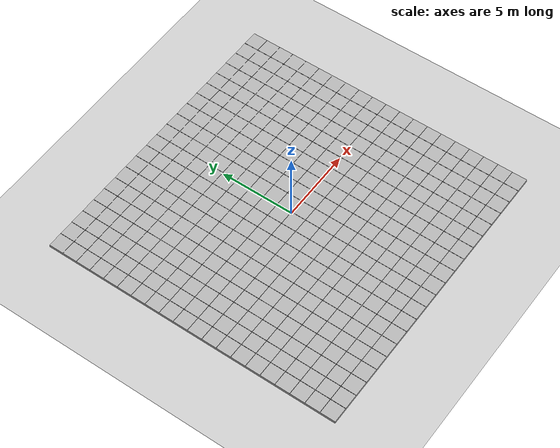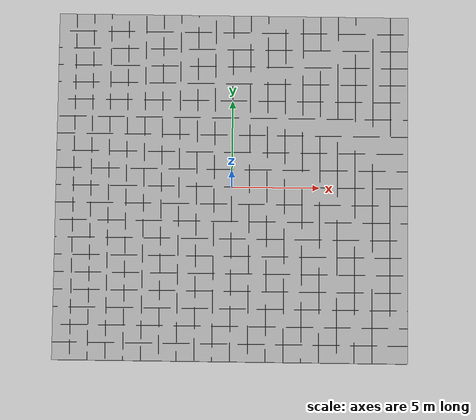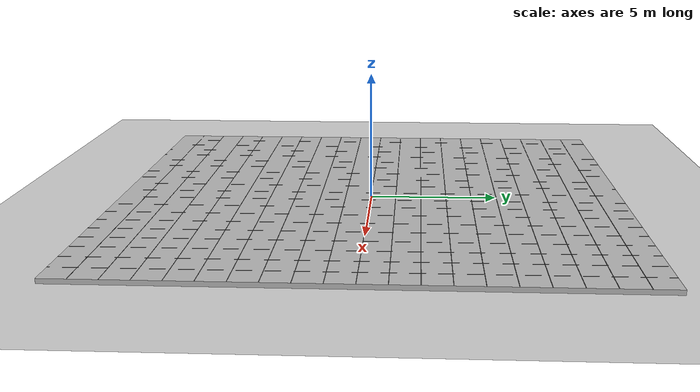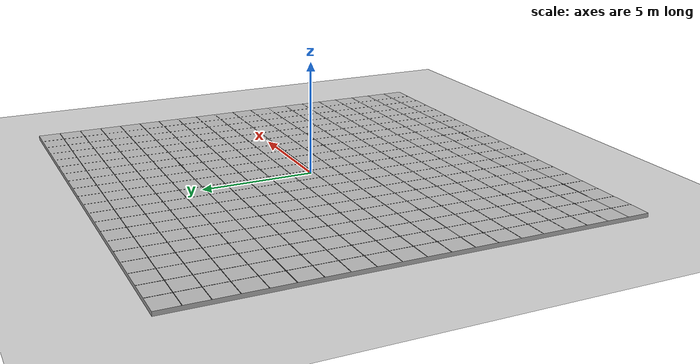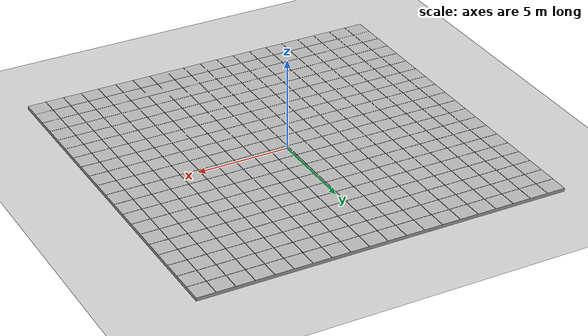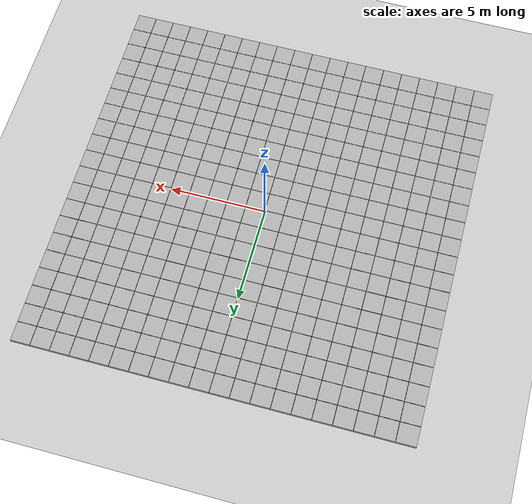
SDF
<?xml version="1.0" ?>
<sdf version="1.6">
  <world name="legged_world">

    <plugin name="gazebo_ros_state" filename="libgazebo_ros_state.so">
      <ros>
        <namespace>/gazebo</namespace>
      </ros>
      <update_rate>50.0</update_rate>
    </plugin>

    <gravity>0 0 -9.81</gravity>

    <include>
      <uri>model://sun</uri>
    </include>

    <model name="ground_plane">
      <static>true</static>
      <link name="link">
        <collision name="collision">
          <geometry>
            <plane>
              <normal>0 0 1</normal>
              <size>100 100</size>
            </plane>
          </geometry>
          <surface>
            <friction>
              <ode>
                <mu>1000</mu>
                <mu2>1000</mu2>
              </ode>
              <torsional>
                <coefficient>100.0</coefficient>
                <patch_radius>0.05</patch_radius>
                <use_patch_radius>true</use_patch_radius>
              </torsional>
            </friction>
            <contact>
              <ode>
                <kp>1000000.0</kp>
                <kd>100.0</kd>
                <max_vel>0.0</max_vel>
                <min_depth>0.001</min_depth>
              </ode>
            </contact>
          </surface>
        </collision>
        <visual name="visual">
          <cast_shadows>false</cast_shadows>
          <geometry>
            <plane>
              <normal>0 0 1</normal>
              <size>100 100</size>
            </plane>
          </geometry>
          <material>
            <script>
              <uri>file://media/materials/scripts/gazebo.material</uri>
              <name>Gazebo/Grey</name>
            </script>
          </material>
        </visual>
      </link>
    </model>

    <!-- ===== SQUARE LARGE RAMP ===== -->
    <model name="tilted_ramp">
      <static>true</static>
      <pose>0 0 0 0 0 0</pose>
      <link name="ramp_link">
        <collision name="collision">
          <pose>0 0 -0.35 0 0 0</pose>
          <geometry><box><size>20 20 1.0</size></box></geometry>
          <surface><friction><ode><mu>1000</mu><mu2>1000</mu2></ode></friction></surface>
        </collision>
        <visual name="top_surface">
          <pose>0 0 -0.35 0 0 0</pose>
          <geometry><box><size>20 20 1.0</size></box></geometry>
          <material>
             <ambient>0.6 0.6 0.6 1</ambient>
             <diffuse>0.7 0.7 0.7 1</diffuse>
          </material>
        </visual>

        <visual name="grid_x_-9">
          <pose>-9 0 0.151 0 0 0</pose>
          <geometry><box><size>0.02 20 0.002</size></box></geometry>
          <material><ambient>0.2 0.2 0.2 1</ambient><diffuse>0.3 0.3 0.3 1</diffuse></material>
        </visual>
        <visual name="grid_y_-9">
          <pose>0 -9 0.151 0 0 0</pose>
          <geometry><box><size>20 0.02 0.002</size></box></geometry>
          <material><ambient>0.2 0.2 0.2 1</ambient><diffuse>0.3 0.3 0.3 1</diffuse></material>
        </visual>

        <visual name="grid_x_-8">
          <pose>-8 0 0.151 0 0 0</pose>
          <geometry><box><size>0.02 20 0.002</size></box></geometry>
          <material><ambient>0.2 0.2 0.2 1</ambient><diffuse>0.3 0.3 0.3 1</diffuse></material>
        </visual>
        <visual name="grid_y_-8">
          <pose>0 -8 0.151 0 0 0</pose>
          <geometry><box><size>20 0.02 0.002</size></box></geometry>
          <material><ambient>0.2 0.2 0.2 1</ambient><diffuse>0.3 0.3 0.3 1</diffuse></material>
        </visual>

        <visual name="grid_x_-7">
          <pose>-7 0 0.151 0 0 0</pose>
          <geometry><box><size>0.02 20 0.002</size></box></geometry>
          <material><ambient>0.2 0.2 0.2 1</ambient><diffuse>0.3 0.3 0.3 1</diffuse></material>
        </visual>
        <visual name="grid_y_-7">
          <pose>0 -7 0.151 0 0 0</pose>
          <geometry><box><size>20 0.02 0.002</size></box></geometry>
          <material><ambient>0.2 0.2 0.2 1</ambient><diffuse>0.3 0.3 0.3 1</diffuse></material>
        </visual>

        <visual name="grid_x_-6">
          <pose>-6 0 0.151 0 0 0</pose>
          <geometry><box><size>0.02 20 0.002</size></box></geometry>
          <material><ambient>0.2 0.2 0.2 1</ambient><diffuse>0.3 0.3 0.3 1</diffuse></material>
        </visual>
        <visual name="grid_y_-6">
          <pose>0 -6 0.151 0 0 0</pose>
          <geometry><box><size>20 0.02 0.002</size></box></geometry>
          <material><ambient>0.2 0.2 0.2 1</ambient><diffuse>0.3 0.3 0.3 1</diffuse></material>
        </visual>

        <visual name="grid_x_-5">
          <pose>-5 0 0.151 0 0 0</pose>
          <geometry><box><size>0.02 20 0.002</size></box></geometry>
          <material><ambient>0.2 0.2 0.2 1</ambient><diffuse>0.3 0.3 0.3 1</diffuse></material>
        </visual>
        <visual name="grid_y_-5">
          <pose>0 -5 0.151 0 0 0</pose>
          <geometry><box><size>20 0.02 0.002</size></box></geometry>
          <material><ambient>0.2 0.2 0.2 1</ambient><diffuse>0.3 0.3 0.3 1</diffuse></material>
        </visual>

        <visual name="grid_x_-4">
          <pose>-4 0 0.151 0 0 0</pose>
          <geometry><box><size>0.02 20 0.002</size></box></geometry>
          <material><ambient>0.2 0.2 0.2 1</ambient><diffuse>0.3 0.3 0.3 1</diffuse></material>
        </visual>
        <visual name="grid_y_-4">
          <pose>0 -4 0.151 0 0 0</pose>
          <geometry><box><size>20 0.02 0.002</size></box></geometry>
          <material><ambient>0.2 0.2 0.2 1</ambient><diffuse>0.3 0.3 0.3 1</diffuse></material>
        </visual>

        <visual name="grid_x_-3">
          <pose>-3 0 0.151 0 0 0</pose>
          <geometry><box><size>0.02 20 0.002</size></box></geometry>
          <material><ambient>0.2 0.2 0.2 1</ambient><diffuse>0.3 0.3 0.3 1</diffuse></material>
        </visual>
        <visual name="grid_y_-3">
          <pose>0 -3 0.151 0 0 0</pose>
          <geometry><box><size>20 0.02 0.002</size></box></geometry>
          <material><ambient>0.2 0.2 0.2 1</ambient><diffuse>0.3 0.3 0.3 1</diffuse></material>
        </visual>

        <visual name="grid_x_-2">
          <pose>-2 0 0.151 0 0 0</pose>
          <geometry><box><size>0.02 20 0.002</size></box></geometry>
          <material><ambient>0.2 0.2 0.2 1</ambient><diffuse>0.3 0.3 0.3 1</diffuse></material>
        </visual>
        <visual name="grid_y_-2">
          <pose>0 -2 0.151 0 0 0</pose>
          <geometry><box><size>20 0.02 0.002</size></box></geometry>
          <material><ambient>0.2 0.2 0.2 1</ambient><diffuse>0.3 0.3 0.3 1</diffuse></material>
        </visual>

        <visual name="grid_x_-1">
          <pose>-1 0 0.151 0 0 0</pose>
          <geometry><box><size>0.02 20 0.002</size></box></geometry>
          <material><ambient>0.2 0.2 0.2 1</ambient><diffuse>0.3 0.3 0.3 1</diffuse></material>
        </visual>
        <visual name="grid_y_-1">
          <pose>0 -1 0.151 0 0 0</pose>
          <geometry><box><size>20 0.02 0.002</size></box></geometry>
          <material><ambient>0.2 0.2 0.2 1</ambient><diffuse>0.3 0.3 0.3 1</diffuse></material>
        </visual>

        <visual name="grid_x_0">
          <pose>0 0 0.151 0 0 0</pose>
          <geometry><box><size>0.02 20 0.002</size></box></geometry>
          <material><ambient>0.2 0.2 0.2 1</ambient><diffuse>0.3 0.3 0.3 1</diffuse></material>
        </visual>
        <visual name="grid_y_0">
          <pose>0 0 0.151 0 0 0</pose>
          <geometry><box><size>20 0.02 0.002</size></box></geometry>
          <material><ambient>0.2 0.2 0.2 1</ambient><diffuse>0.3 0.3 0.3 1</diffuse></material>
        </visual>

        <visual name="grid_x_1">
          <pose>1 0 0.151 0 0 0</pose>
          <geometry><box><size>0.02 20 0.002</size></box></geometry>
          <material><ambient>0.2 0.2 0.2 1</ambient><diffuse>0.3 0.3 0.3 1</diffuse></material>
        </visual>
        <visual name="grid_y_1">
          <pose>0 1 0.151 0 0 0</pose>
          <geometry><box><size>20 0.02 0.002</size></box></geometry>
          <material><ambient>0.2 0.2 0.2 1</ambient><diffuse>0.3 0.3 0.3 1</diffuse></material>
        </visual>

        <visual name="grid_x_2">
          <pose>2 0 0.151 0 0 0</pose>
          <geometry><box><size>0.02 20 0.002</size></box></geometry>
          <material><ambient>0.2 0.2 0.2 1</ambient><diffuse>0.3 0.3 0.3 1</diffuse></material>
        </visual>
        <visual name="grid_y_2">
          <pose>0 2 0.151 0 0 0</pose>
          <geometry><box><size>20 0.02 0.002</size></box></geometry>
          <material><ambient>0.2 0.2 0.2 1</ambient><diffuse>0.3 0.3 0.3 1</diffuse></material>
        </visual>

        <visual name="grid_x_3">
          <pose>3 0 0.151 0 0 0</pose>
          <geometry><box><size>0.02 20 0.002</size></box></geometry>
          <material><ambient>0.2 0.2 0.2 1</ambient><diffuse>0.3 0.3 0.3 1</diffuse></material>
        </visual>
        <visual name="grid_y_3">
          <pose>0 3 0.151 0 0 0</pose>
          <geometry><box><size>20 0.02 0.002</size></box></geometry>
          <material><ambient>0.2 0.2 0.2 1</ambient><diffuse>0.3 0.3 0.3 1</diffuse></material>
        </visual>

        <visual name="grid_x_4">
          <pose>4 0 0.151 0 0 0</pose>
          <geometry><box><size>0.02 20 0.002</size></box></geometry>
          <material><ambient>0.2 0.2 0.2 1</ambient><diffuse>0.3 0.3 0.3 1</diffuse></material>
        </visual>
        <visual name="grid_y_4">
          <pose>0 4 0.151 0 0 0</pose>
          <geometry><box><size>20 0.02 0.002</size></box></geometry>
          <material><ambient>0.2 0.2 0.2 1</ambient><diffuse>0.3 0.3 0.3 1</diffuse></material>
        </visual>

        <visual name="grid_x_5">
          <pose>5 0 0.151 0 0 0</pose>
          <geometry><box><size>0.02 20 0.002</size></box></geometry>
          <material><ambient>0.2 0.2 0.2 1</ambient><diffuse>0.3 0.3 0.3 1</diffuse></material>
        </visual>
        <visual name="grid_y_5">
          <pose>0 5 0.151 0 0 0</pose>
          <geometry><box><size>20 0.02 0.002</size></box></geometry>
          <material><ambient>0.2 0.2 0.2 1</ambient><diffuse>0.3 0.3 0.3 1</diffuse></material>
        </visual>

        <visual name="grid_x_6">
          <pose>6 0 0.151 0 0 0</pose>
          <geometry><box><size>0.02 20 0.002</size></box></geometry>
          <material><ambient>0.2 0.2 0.2 1</ambient><diffuse>0.3 0.3 0.3 1</diffuse></material>
        </visual>
        <visual name="grid_y_6">
          <pose>0 6 0.151 0 0 0</pose>
          <geometry><box><size>20 0.02 0.002</size></box></geometry>
          <material><ambient>0.2 0.2 0.2 1</ambient><diffuse>0.3 0.3 0.3 1</diffuse></material>
        </visual>

        <visual name="grid_x_7">
          <pose>7 0 0.151 0 0 0</pose>
          <geometry><box><size>0.02 20 0.002</size></box></geometry>
          <material><ambient>0.2 0.2 0.2 1</ambient><diffuse>0.3 0.3 0.3 1</diffuse></material>
        </visual>
        <visual name="grid_y_7">
          <pose>0 7 0.151 0 0 0</pose>
          <geometry><box><size>20 0.02 0.002</size></box></geometry>
          <material><ambient>0.2 0.2 0.2 1</ambient><diffuse>0.3 0.3 0.3 1</diffuse></material>
        </visual>

        <visual name="grid_x_8">
          <pose>8 0 0.151 0 0 0</pose>
          <geometry><box><size>0.02 20 0.002</size></box></geometry>
          <material><ambient>0.2 0.2 0.2 1</ambient><diffuse>0.3 0.3 0.3 1</diffuse></material>
        </visual>
        <visual name="grid_y_8">
          <pose>0 8 0.151 0 0 0</pose>
          <geometry><box><size>20 0.02 0.002</size></box></geometry>
          <material><ambient>0.2 0.2 0.2 1</ambient><diffuse>0.3 0.3 0.3 1</diffuse></material>
        </visual>

        <visual name="grid_x_9">
          <pose>9 0 0.151 0 0 0</pose>
          <geometry><box><size>0.02 20 0.002</size></box></geometry>
          <material><ambient>0.2 0.2 0.2 1</ambient><diffuse>0.3 0.3 0.3 1</diffuse></material>
        </visual>
        <visual name="grid_y_9">
          <pose>0 9 0.151 0 0 0</pose>
          <geometry><box><size>20 0.02 0.002</size></box></geometry>
          <material><ambient>0.2 0.2 0.2 1</ambient><diffuse>0.3 0.3 0.3 1</diffuse></material>
        </visual>

      </link>
    </model>

    <!-- Physics engine: tuned for legged robot -->
    <physics type="ode">
      <max_step_size>0.001</max_step_size>
      <real_time_factor>1.0</real_time_factor>
      <real_time_update_rate>1000</real_time_update_rate>
      <ode>
        <solver>
          <type>quick</type>
          <iters>200</iters>
          <sor>1.3</sor>
          <use_dynamic_moi_rescaling>true</use_dynamic_moi_rescaling>
        </solver>
        <constraints>
          <cfm>0.0</cfm>
          <erp>0.2</erp>
          <contact_max_correcting_vel>0.0</contact_max_correcting_vel>
          <contact_surface_layer>0.0</contact_surface_layer>
        </constraints>
      </ode>
    </physics>

  </world>
</sdf>
